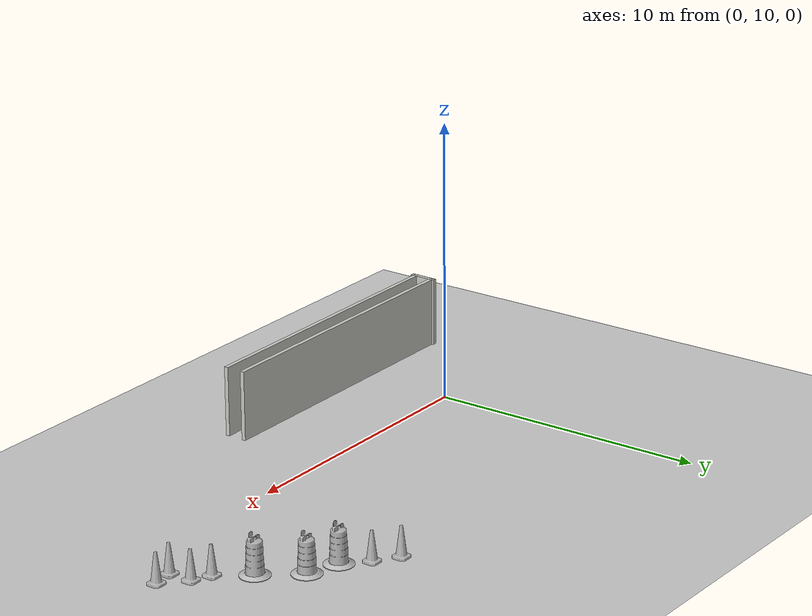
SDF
<sdf version="1.7">
 <world name="default">
  <light name="sun" type="directional">
   <pose>0 0 10 0 -0 0</pose>
   <diffuse>0.8 0.8 0.8 1</diffuse>
   <specular>0.2 0.2 0.2 1</specular>
   <attenuation>
    <range>1000</range>
    <constant>0.9</constant>
    <linear>0.01</linear>
    <quadratic>0.001</quadratic>
   </attenuation>
   <direction>-0.5 0.1 -0.9</direction>
   <spot><inner_angle>0</inner_angle><outer_angle>0</outer_angle><falloff>0</falloff></spot>
  </light>
  <model name="ground_plane">
   <static>1</static>
   <link name="link">
    <collision name="collision">
     <geometry><plane><normal>0 0 1</normal><size>100 100</size></plane></geometry>
     <surface>
      <contact><collide_bitmask>65535</collide_bitmask></contact>
      <friction><ode><mu>100</mu><mu2>50</mu2></ode></friction>
     </surface>
    </collision>
    <visual name="visual">
     <cast_shadows>0</cast_shadows>
     <geometry><plane><normal>0 0 1</normal><size>100 100</size></plane></geometry>
     <material>
      <script><uri>file://media/materials/scripts/gazebo.material</uri><name>Gazebo/Grey</name></script>
     </material>
    </visual>
   </link>
  </model>
  <gravity>0 0 -9.8</gravity>
  <magnetic_field>6e-06 2.3e-05 -4.2e-05</magnetic_field>
  <atmosphere type="adiabatic"/>
  <physics type="ode">
   <max_step_size>0.001</max_step_size>
   <real_time_factor>1</real_time_factor>
   <real_time_update_rate>1000</real_time_update_rate>
  </physics>
  <scene><ambient>0.4 0.4 0.4 1</ambient><background>0.7 0.7 0.7 1</background><shadows>1</shadows></scene>
  <audio><device>default</device></audio>
  <spherical_coordinates>
   <surface_model>EARTH_WGS84</surface_model>
   <latitude_deg>0</latitude_deg>
   <longitude_deg>0</longitude_deg>
   <elevation>0</elevation>
   <heading_deg>0</heading_deg>
  </spherical_coordinates>
  <model name="Construction Cone">
   <link name="link">
    <collision name="collision">
     <geometry>
      <mesh><scale>10 10 10</scale><uri>model://construction_cone/meshes/construction_cone.dae</uri></mesh>
     </geometry>
    </collision>
    <visual name="visual">
     <geometry>
      <mesh><scale>10 10 10</scale><uri>model://construction_cone/meshes/construction_cone.dae</uri></mesh>
     </geometry>
    </visual>
    <inertial>
     <inertia><ixx>1</ixx><ixy>0</ixy><ixz>0</ixz><iyy>1</iyy><iyz>0</iyz><izz>1</izz></inertia>
     <mass>1</mass>
    </inertial>
   </link>
   <pose>17.2343 11.4112 -0 0 -0 0</pose>
  </model>
  <model name="Construction Barrel">
   <link name="link">
    <inertial>
     <pose>0 0 0.4 0 -0 0</pose>
     <mass>500</mass>
     <inertia><ixx>51.2096</ixx><iyy>51.2096</iyy><izz>25</izz><ixy>0</ixy><ixz>0</ixz><iyz>0</iyz></inertia>
    </inertial>
    <collision name="collision">
     <geometry><mesh><uri>model://construction_barrel/meshes/construction_barrel.dae</uri></mesh></geometry>
    </collision>
    <visual name="visual">
     <geometry><mesh><uri>model://construction_barrel/meshes/construction_barrel.dae</uri></mesh></geometry>
    </visual>
   </link>
   <pose>15.008 13.4795 0 0 0 -5.1e-05</pose>
  </model>
  <model name="Construction Cone_0">
   <link name="link">
    <collision name="collision">
     <geometry>
      <mesh><scale>10 10 10</scale><uri>model://construction_cone/meshes/construction_cone.dae</uri></mesh>
     </geometry>
    </collision>
    <visual name="visual">
     <geometry>
      <mesh><scale>10 10 10</scale><uri>model://construction_cone/meshes/construction_cone.dae</uri></mesh>
     </geometry>
    </visual>
    <inertial>
     <inertia><ixx>1</ixx><ixy>0</ixy><ixz>0</ixz><iyy>1</iyy><iyz>0</iyz><izz>1</izz></inertia>
     <mass>1</mass>
    </inertial>
   </link>
   <pose>11.3792 16.3996 -0 0 -0 0</pose>
  </model>
  <model name="Construction Barrel_0">
   <link name="link">
    <inertial>
     <pose>0 0 0.4 0 -0 0</pose>
     <mass>500</mass>
     <inertia><ixx>51.2096</ixx><iyy>51.2096</iyy><izz>25</izz><ixy>0</ixy><ixz>0</ixz><iyz>0</iyz></inertia>
    </inertial>
    <collision name="collision">
     <geometry><mesh><uri>model://construction_barrel/meshes/construction_barrel.dae</uri></mesh></geometry>
    </collision>
    <visual name="visual">
     <geometry><mesh><uri>model://construction_barrel/meshes/construction_barrel.dae</uri></mesh></geometry>
    </visual>
   </link>
   <pose>14.008 14.7233 -4e-06 -5e-06 -7e-06 -4.4e-05</pose>
  </model>
  <model name="Construction Barrel_1">
   <link name="link">
    <inertial>
     <pose>0 0 0.4 0 -0 0</pose>
     <mass>500</mass>
     <inertia><ixx>51.2096</ixx><iyy>51.2096</iyy><izz>25</izz><ixy>0</ixy><ixz>0</ixz><iyz>0</iyz></inertia>
    </inertial>
    <collision name="collision">
     <geometry><mesh><uri>model://construction_barrel/meshes/construction_barrel.dae</uri></mesh></geometry>
    </collision>
    <visual name="visual">
     <geometry><mesh><uri>model://construction_barrel/meshes/construction_barrel.dae</uri></mesh></geometry>
    </visual>
   </link>
   <pose>12.886 15.102 -4e-06 -5e-06 -7e-06 -4.3e-05</pose>
  </model>
  <model name="Construction Cone_1">
   <link name="link">
    <collision name="collision">
     <geometry>
      <mesh><scale>10 10 10</scale><uri>model://construction_cone/meshes/construction_cone.dae</uri></mesh>
     </geometry>
    </collision>
    <visual name="visual">
     <geometry>
      <mesh><scale>10 10 10</scale><uri>model://construction_cone/meshes/construction_cone.dae</uri></mesh>
     </geometry>
    </visual>
    <inertial>
     <inertia><ixx>1</ixx><ixy>0</ixy><ixz>0</ixz><iyy>1</iyy><iyz>0</iyz><izz>1</izz></inertia>
     <mass>1</mass>
    </inertial>
   </link>
   <pose>16.4513 12.1275 -0 -0 -0 -0</pose>
  </model>
  <model name="Construction Cone_2">
   <link name="link">
    <collision name="collision">
     <geometry>
      <mesh><scale>10 10 10</scale><uri>model://construction_cone/meshes/construction_cone.dae</uri></mesh>
     </geometry>
    </collision>
    <visual name="visual">
     <geometry>
      <mesh><scale>10 10 10</scale><uri>model://construction_cone/meshes/construction_cone.dae</uri></mesh>
     </geometry>
    </visual>
    <inertial>
     <inertia><ixx>1</ixx><ixy>0</ixy><ixz>0</ixz><iyy>1</iyy><iyz>0</iyz><izz>1</izz></inertia>
     <mass>1</mass>
    </inertial>
   </link>
   <pose>15.8189 12.434 -1e-06 1e-06 -2e-06 -0</pose>
  </model>
  <model name="Construction Cone_4">
   <link name="link">
    <collision name="collision">
     <geometry>
      <mesh><scale>10 10 10</scale><uri>model://construction_cone/meshes/construction_cone.dae</uri></mesh>
     </geometry>
    </collision>
    <visual name="visual">
     <geometry>
      <mesh><scale>10 10 10</scale><uri>model://construction_cone/meshes/construction_cone.dae</uri></mesh>
     </geometry>
    </visual>
    <inertial>
     <inertia><ixx>1</ixx><ixy>0</ixy><ixz>0</ixz><iyy>1</iyy><iyz>0</iyz><izz>1</izz></inertia>
     <mass>1</mass>
    </inertial>
   </link>
   <pose>16.4781 11.2953 -0 -0 -0 -0</pose>
  </model>
  <model name="Construction Cone_5">
   <link name="link">
    <collision name="collision">
     <geometry>
      <mesh><scale>10 10 10</scale><uri>model://construction_cone/meshes/construction_cone.dae</uri></mesh>
     </geometry>
    </collision>
    <visual name="visual">
     <geometry>
      <mesh><scale>10 10 10</scale><uri>model://construction_cone/meshes/construction_cone.dae</uri></mesh>
     </geometry>
    </visual>
    <inertial>
     <inertia><ixx>1</ixx><ixy>0</ixy><ixz>0</ixz><iyy>1</iyy><iyz>0</iyz><izz>1</izz></inertia>
     <mass>1</mass>
    </inertial>
   </link>
   <pose>12.171 15.846 -6e-06 -4e-06 0 0</pose>
  </model>
  <model name="short_wall2">
   <pose>-6.70824 7.14325 0 0 -0 0</pose>
   <link name="Wall_0">
    <collision name="Wall_0_Collision">
     <geometry><box><size>1 0.15 2.5</size></box></geometry>
     <pose>0 0 1.25 0 -0 0</pose>
    </collision>
    <visual name="Wall_0_Visual">
     <pose>0 0 1.25 0 -0 0</pose>
     <geometry><box><size>1 0.15 2.5</size></box></geometry>
     <material>
      <script><uri>file://media/materials/scripts/gazebo.material</uri><name>Gazebo/CeilingTiled</name></script>
      <ambient>1 1 1 1</ambient>
     </material>
     <meta><layer>0</layer></meta>
    </visual>
    <pose>2.7875 -0.8825 0 0 -0 1.5708</pose>
   </link>
   <static>1</static>
  </model>
  <model name="long_wall2">
   <pose>1.49358 6.81245 0 0 -0 0</pose>
   <link name="Wall_0">
    <collision name="Wall_0_Collision">
     <geometry><box><size>11 0.15 2.5</size></box></geometry>
     <pose>0 0 1.25 0 -0 0</pose>
    </collision>
    <visual name="Wall_0_Visual">
     <pose>0 0 1.25 0 -0 0</pose>
     <geometry><box><size>11 0.15 2.5</size></box></geometry>
     <material>
      <script><uri>file://media/materials/scripts/gazebo.material</uri><name>Gazebo/CeilingTiled</name></script>
      <ambient>1 1 1 1</ambient>
     </material>
     <meta><layer>0</layer></meta>
    </visual>
    <pose>0 -0.8825 0 0 -0 0</pose>
   </link>
   <static>1</static>
  </model>
  <model name="long_wall2_clone">
   <pose>1.50218 7.49898 0 0 -0 0</pose>
   <link name="Wall_0">
    <collision name="Wall_0_Collision">
     <geometry><box><size>11 0.15 2.5</size></box></geometry>
     <pose>0 0 1.25 0 -0 0</pose>
    </collision>
    <visual name="Wall_0_Visual">
     <pose>0 0 1.25 0 -0 0</pose>
     <geometry><box><size>11 0.15 2.5</size></box></geometry>
     <material>
      <script><uri>file://media/materials/scripts/gazebo.material</uri><name>Gazebo/CeilingTiled</name></script>
      <ambient>1 1 1 1</ambient>
     </material>
     <meta><layer>0</layer></meta>
    </visual>
    <pose>0 -0.8825 0 0 -0 0</pose>
   </link>
   <static>1</static>
  </model>
 </world>
</sdf>
